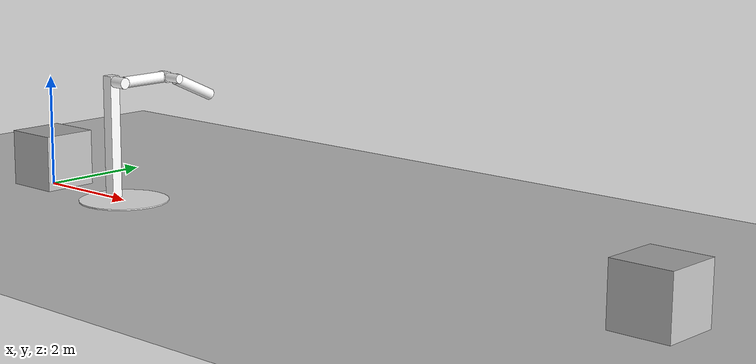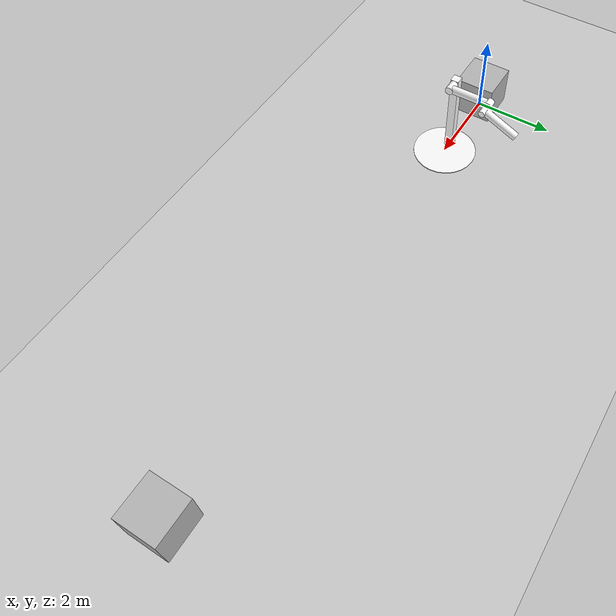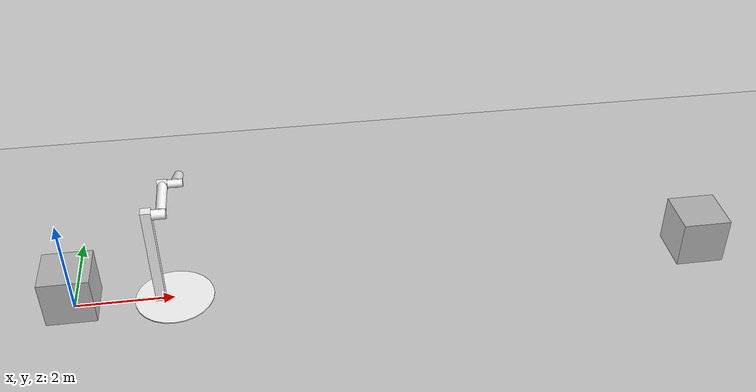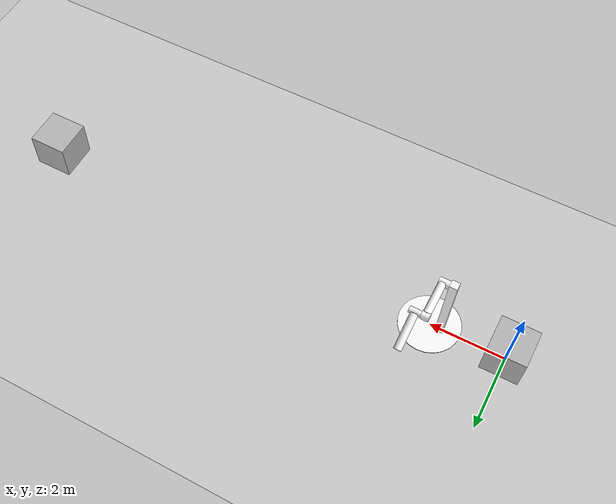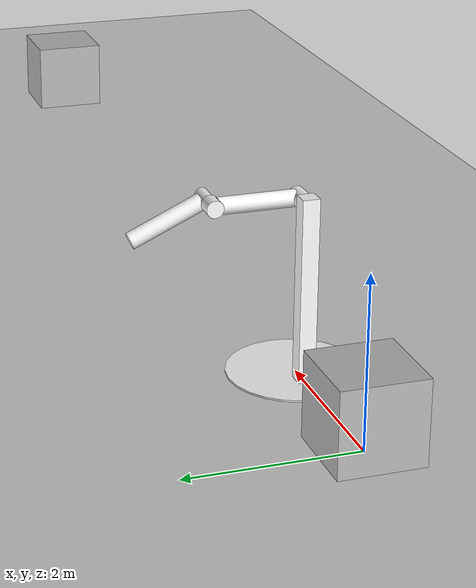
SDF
<?xml version="1.0" ?>
<sdf version="1.6">
  <world name="default">
    <include>
      <uri>model://ground_plane</uri>
    </include>
    <include>
      <uri>model://sun</uri>
    </include>

    <model name="multicamera_model">
      <static>true</static>
      <pose>0 0 0.5 0 0 0</pose>
      <link name="link">
        <collision name="collision">
          <geometry>
            <box>
              <size>1 1 1</size>
            </box>
          </geometry>
        </collision>

        <visual name="visual">
          <geometry>
            <box>
              <size>1 1 1</size>
            </box>
          </geometry>
        </visual>

        <sensor name="multicamera_sensor" type="multicamera">
          <!-- We choose a high fps on purpose. The goal is to check the effect
            of lockstep. -->
          <update_rate>500</update_rate>

          <camera name="top_left">
            <pose>0 -0.1 0.1 0 0 0</pose>
            <horizontal_fov>1.3962634</horizontal_fov>
            <image>
              <width>1024</width>
              <height>544</height>
              <format>R8G8B8</format>
            </image>
            <clip>
              <near>0.02</near>
              <far>100</far>
            </clip>
          </camera>

          <camera name="top_right">
            <pose>0 0.1 0.1 0 0 0</pose>
            <horizontal_fov>1.3962634</horizontal_fov>
            <image>
              <width>1024</width>
              <height>544</height>
              <format>R8G8B8</format>
            </image>
            <clip>
              <near>0.02</near>
              <far>100</far>
            </clip>
          </camera>

          <camera name="bottom_left">
            <pose>0 -0.1 -0.1 0 0 0</pose>
            <horizontal_fov>1.3962634</horizontal_fov>
            <image>
              <width>1024</width>
              <height>544</height>
              <format>R8G8B8</format>
            </image>
            <clip>
              <near>0.02</near>
              <far>100</far>
            </clip>
          </camera>
        </sensor>
      </link>
    </model>

    <model name="box">
      <pose>13 0 0.5 0 0 0</pose>
      <link name="link">
        <collision name="collision">
          <geometry>
            <box>
              <size>5 5 5</size>
            </box>
          </geometry>
        </collision>
        <visual name="visual">
          <geometry>
            <box>
              <size>1 1 1</size>
            </box>
          </geometry>
        </visual>
      </link>
    </model>

    <!-- Double pendulum -->
    <include>
      <name>active_pendulum</name>
      <uri>model://double_pendulum_with_base</uri>
      <pose>2 0 0 0 0 0</pose>
      <scale>0.5 0.5 0.5</scale>
    </include>

  </world>
</sdf>

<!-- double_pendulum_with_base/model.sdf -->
<sdf version="1.5">
  <model name="double_pendulum_with_base">
    <link name="base">
      <inertial>
        <mass>100</mass>
      </inertial>
      <visual name="vis_plate_on_ground">
        <pose>0 0 0.01 0 0 0</pose>
        <geometry>
          <cylinder>
            <radius>0.8</radius>
            <length>0.02</length>
          </cylinder>
        </geometry>
        <material><diffuse>1 1 1 1</diffuse><specular>0.1 0.1 0.1 1</specular></material>
      </visual>
      <visual name="vis_pole">
        <pose>-0.275 0 1.1 0 0 0</pose>
        <geometry>
          <box>
            <size>0.2 0.2 2.2</size>
          </box>
        </geometry>
        <material><diffuse>1 1 1 1</diffuse><specular>0.1 0.1 0.1 1</specular></material>
      </visual>
      <collision name="col_plate_on_ground">
        <pose>0 0 0.01 0 0 0</pose>
        <geometry>
          <cylinder>
            <radius>0.8</radius>
            <length>0.02</length>
          </cylinder>
        </geometry>
      </collision>
      <collision name="col_pole">
        <pose>-0.275 0 1.1 0 0 0</pose>
        <geometry>
          <box>
            <size>0.2 0.2 2.2</size>
          </box>
        </geometry>
      </collision>
    </link>
    <!-- upper link, length 1, IC -90 degrees -->
    <link name="upper_link">
      <pose>0 0 2.1 -1.5708 0 0</pose>
      <self_collide>0</self_collide>
      <inertial>
        <pose>0 0 0.5 0 0 0</pose>
      </inertial>
      <visual name="vis_upper_joint">
        <pose>-0.05 0 0 0 1.5708 0</pose>
        <geometry>
          <cylinder>
            <radius>0.1</radius>
            <length>0.3</length>
          </cylinder>
        </geometry>
        <material><diffuse>1 1 1 1</diffuse><specular>0.1 0.1 0.1 1</specular></material>
      </visual>
      <visual name="vis_lower_joint">
        <pose>0 0 1.0 0 1.5708 0</pose>
        <geometry>
          <cylinder>
            <radius>0.1</radius>
            <length>0.2</length>
          </cylinder>
        </geometry>
        <material><diffuse>1 1 1 1</diffuse><specular>0.1 0.1 0.1 1</specular></material>
      </visual>
      <visual name="vis_cylinder">
        <pose>0 0 0.5 0 0 0</pose>
        <geometry>
          <cylinder>
            <radius>0.1</radius>
            <length>0.9</length>
          </cylinder>
        </geometry>
        <material><diffuse>1 1 1 1</diffuse><specular>0.1 0.1 0.1 1</specular></material>
      </visual>
      <collision name="col_upper_joint">
        <pose>-0.05 0 0 0 1.5708 0</pose>
        <geometry>
          <cylinder>
            <radius>0.1</radius>
            <length>0.3</length>
          </cylinder>
        </geometry>
      </collision>
      <collision name="col_lower_joint">
        <pose>0 0 1.0 0 1.5708 0</pose>
        <geometry>
          <cylinder>
            <radius>0.1</radius>
            <length>0.2</length>
          </cylinder>
        </geometry>
      </collision>
      <collision name="col_cylinder">
        <pose>0 0 0.5 0 0 0</pose>
        <geometry>
          <cylinder>
            <radius>0.1</radius>
            <length>0.9</length>
          </cylinder>
        </geometry>
      </collision>
    </link>
    <!-- lower link, length 1, IC ~-120 degrees more -->
    <link name="lower_link">
      <pose>0.25 1.0 2.1 -2 0 0</pose>
      <self_collide>0</self_collide>
      <inertial>
        <pose>0 0 0.5 0 0 0</pose>
      </inertial>
      <visual name="vis_lower_joint">
        <pose>0 0 0 0 1.5708 0</pose>
        <geometry>
          <cylinder>
            <radius>0.08</radius>
            <length>0.3</length>
          </cylinder>
        </geometry>
        <material><diffuse>1 1 1 1</diffuse><specular>0.1 0.1 0.1 1</specular></material>
      </visual>
      <visual name="vis_cylinder">
        <pose>0 0 0.5 0 0 0</pose>
        <geometry>
          <cylinder>
            <radius>0.1</radius>
            <length>0.9</length>
          </cylinder>
        </geometry>
        <material><diffuse>1 1 1 1</diffuse><specular>0.1 0.1 0.1 1</specular></material>
      </visual>
      <collision name="col_lower_joint">
        <pose>0 0 0 0 1.5708 0</pose>
        <geometry>
          <cylinder>
            <radius>0.08</radius>
            <length>0.3</length>
          </cylinder>
        </geometry>
      </collision>
      <collision name="col_cylinder">
        <pose>0 0 0.5 0 0 0</pose>
        <geometry>
          <cylinder>
            <radius>0.1</radius>
            <length>0.9</length>
          </cylinder>
        </geometry>
      </collision>
    </link>
    <!-- pin joint for upper link, at origin of upper link -->
    <joint name="upper_joint" type="revolute">
      <parent>base</parent>
      <child>upper_link</child>
      <axis>
        <xyz>1.0 0 0</xyz>
      </axis>
    </joint>
    <!-- pin joint for lower link, at origin of child link -->
    <joint name="lower_joint" type="revolute">
      <parent>upper_link</parent>
      <child>lower_link</child>
      <axis>
        <xyz>1.0 0 0</xyz>
      </axis>
    </joint>
  </model>
</sdf>
